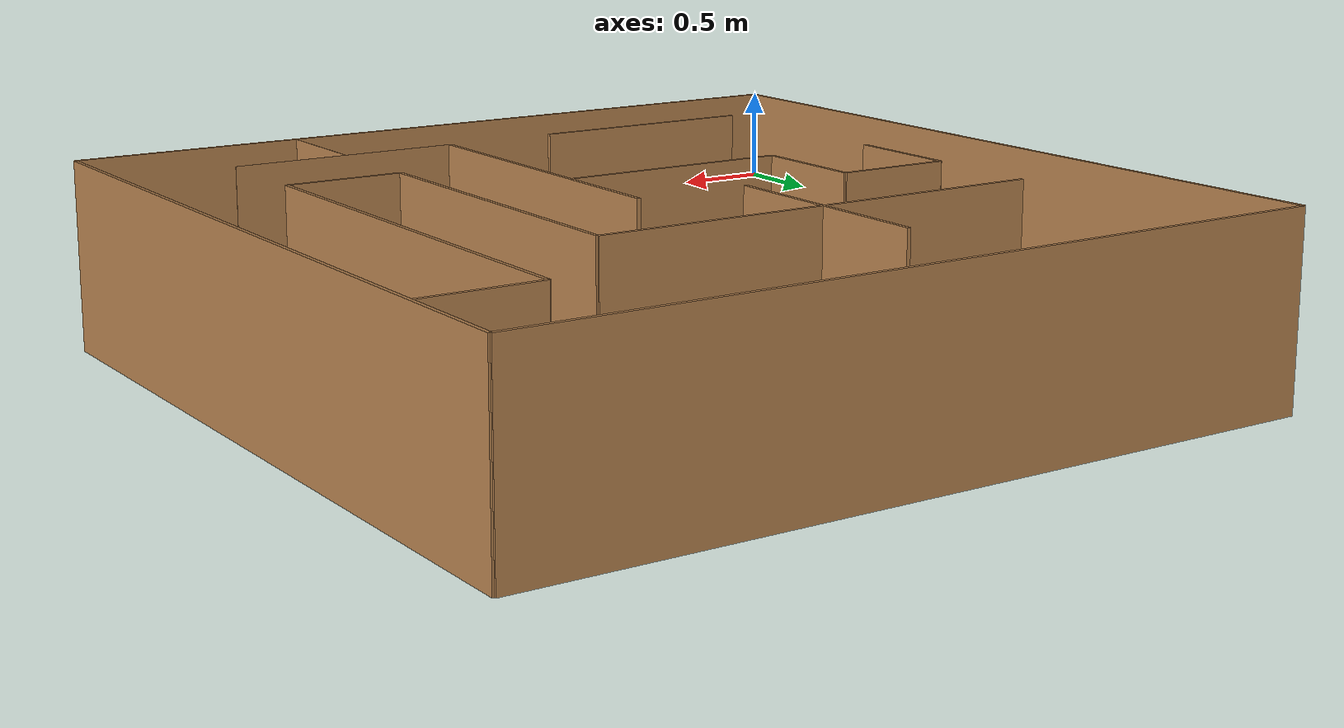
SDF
<?xml version='1.0'?>
<sdf version='1.6'>
  <model name='eced3901_lab5'>
    <pose>0 0 0 0 -0 0</pose>
    <link name='Wall_0'>
      <collision name='Wall_0_Collision'>
        <geometry>
          <box>
            <size>1.2192 0.02 1</size>
          </box>
        </geometry>
      </collision>
      <visual name='Wall_0_Visual'>
        <geometry>
          <box>
            <size>1.2192 0.02 1</size>
          </box>
        </geometry>
        <material>
          <script>
            <uri>file://media/materials/scripts/gazebo.material</uri>
            <name>Gazebo/Wood</name>
          </script>
          <ambient>1 1 1 1</ambient>
        </material>
      </visual>
      <pose>1.2192 0.6096 0 0 -0 0</pose>
    </link>
    <link name='Wall_2'>
      <collision name='Wall_2_Collision'>
        <geometry>
          <box>
            <size>1.2192 0.002 1</size>
          </box>
        </geometry>
      </collision>
      <visual name='Wall_2_Visual'>
        <geometry>
          <box>
            <size>1.2192 0.002 1</size>
          </box>
        </geometry>
        <material>
          <script>
            <uri>file://media/materials/scripts/gazebo.material</uri>
            <name>Gazebo/Wood</name>
          </script>
          <ambient>1 1 1 1</ambient>
        </material>
      </visual>
      <pose>3.048 0.6096 0 0 -0 0</pose>
    </link>
    <link name='Wall_3'>
      <collision name='Wall_3_Collision'>
        <geometry>
          <box>
            <size>0.002 0.02 1</size>
          </box>
        </geometry>
      </collision>
      <visual name='Wall_3_Visual'>
        <geometry>
          <box>
            <size>0.002 0.6096 1</size>
          </box>
        </geometry>
        <material>
          <script>
            <uri>file://media/materials/scripts/gazebo.material</uri>
            <name>Gazebo/Wood</name>
          </script>
          <ambient>1 1 1 1</ambient>
        </material>
      </visual>
      <pose>3.048 0.3048 0 0 -0 0</pose>
    </link>
	<link name='Wall_4'>
      <collision name='Wall_4_Collision'>
        <geometry>
          <box>
            <size>0.02 1.8288 1</size>
          </box>
        </geometry>
      </collision>
      <visual name='Wall_4_Visual'>
        <geometry>
          <box>
            <size>0.02 1.8288 1</size>
          </box>
        </geometry>
        <material>
          <script>
            <uri>file://media/materials/scripts/gazebo.material</uri>
            <name>Gazebo/Wood</name>
          </script>
          <ambient>1 1 1 1</ambient>
        </material>
      </visual>
      <pose>2.4384 1.524 0 0 -0 0</pose>
    </link>
	<link name='Wall_5'>
      <collision name='Wall_5_Collision'>
        <geometry>
          <box>
            <size>1.2192 0.02 1</size>
          </box>
        </geometry>
      </collision>
      <visual name='Wall_5_Visual'>
        <geometry>
          <box>
            <size>1.2192 0.02 1</size>
          </box>
        </geometry>
        <material>
          <script>
            <uri>file://media/materials/scripts/gazebo.material</uri>
            <name>Gazebo/Wood</name>
          </script>
          <ambient>1 1 1 1</ambient>
        </material>
      </visual>
      <pose>1.8288 1.8288 0 0 -0 0</pose>
    </link>
	<link name='Wall_6'>
      <collision name='Wall_6_Collision'>
        <geometry>
          <box>
            <size>0.02 0.6096 1</size>
          </box>
        </geometry>
      </collision>
      <visual name='Wall_6_Visual'>
        <geometry>
          <box>
            <size>0.02 0.6096 1</size>
          </box>
        </geometry>
        <material>
          <script>
            <uri>file://media/materials/scripts/gazebo.material</uri>
            <name>Gazebo/Wood</name>
          </script>
          <ambient>1 1 1 1</ambient>
        </material>
      </visual>
      <pose>1.2192 2.1336  0 0 -0 0</pose>
    </link>
	<link name='Wall_7'>
      <collision name='Wall_7_Collision'>
        <geometry>
          <box>
            <size>0.02 0.6096 1</size>
          </box>
        </geometry>
      </collision>
      <visual name='Wall_7_Visual'>
        <geometry>
          <box>
            <size>0.02 0.6096 1</size>
          </box>
        </geometry>
        <material>
          <script>
            <uri>file://media/materials/scripts/gazebo.material</uri>
            <name>Gazebo/Wood</name>
          </script>
          <ambient>1 1 1 1</ambient>
        </material>
      </visual>
      <pose>0.6096 2.133600 0 0 -0 0</pose>
    </link>
	<link name='Wall_8'>
      <collision name='Wall_8_Collision'>
        <geometry>
          <box>
            <size>0.6096 0.02 1</size>
          </box>
        </geometry>
      </collision>
      <visual name='Wall_8_Visual'>
        <geometry>
          <box>
            <size>0.6096 0.02 1</size>
          </box>
        </geometry>
        <material>
          <script>
            <uri>file://media/materials/scripts/gazebo.material</uri>
            <name>Gazebo/Wood</name>
          </script>
          <ambient>1 1 1 1</ambient>
        </material>
      </visual>
      <pose>0.9144 2.4384 0 0 -0 0</pose>
    </link>
	<link name='Wall_9'>
      <collision name='Wall_9_Collision'>
        <geometry>
          <box>
            <size>2.4384 0.02 1</size>
          </box>
        </geometry>
      </collision>
      <visual name='Wall_9_Visual'>
        <geometry>
          <box>
            <size>2.4384 0.02 1</size>
          </box>
        </geometry>
        <material>
          <script>
            <uri>file://media/materials/scripts/gazebo.material</uri>
            <name>Gazebo/Wood</name>
          </script>
          <ambient>1 1 1 1</ambient>
        </material>
      </visual>
      <pose>1.8288 3.048 0 0 -0 0</pose>
    </link>
	<link name='Wall_10'>
      <collision name='Wall_10_Collision'>
        <geometry>
          <box>
            <size>0.02 1.2192 1</size>
          </box>
        </geometry>
      </collision>
      <visual name='Wall_10_Visual'>
        <geometry>
          <box>
            <size>0.02 1.2192 1</size>
          </box>
        </geometry>
        <material>
          <script>
            <uri>file://media/materials/scripts/gazebo.material</uri>
            <name>Gazebo/Wood</name>
          </script>
          <ambient>1 1 1 1</ambient>
        </material>
      </visual>
      <pose>1.8288 3.048 0 0 -0 0</pose>
    </link>
	<link name='Wall_11'>
      <collision name='Wall_11_Collision'>
        <geometry>
          <box>
            <size>0.02 1.8288 1</size>
          </box>
        </geometry>
      </collision>
      <visual name='Wall_11_Visual'>
        <geometry>
          <box>
            <size>0.02 1.8288 1</size>
          </box>
        </geometry>
        <material>
          <script>
            <uri>file://media/materials/scripts/gazebo.material</uri>
            <name>Gazebo/Wood</name>
          </script>
          <ambient>1 1 1 1</ambient>
        </material>
      </visual>
      <pose>3.048 2.1336 0 0 -0 0</pose>
    </link>
		<link name='Wall_12'>
      <collision name='Wall_12_Collision'>
        <geometry>
          <box>
            <size>0.02 2.4384 1</size>
          </box>
        </geometry>
      </collision>
      <visual name='Wall_12_Visual'>
        <geometry>
          <box>
            <size>0.02 2.4384 1</size>
          </box>
        </geometry>
        <material>
          <script>
            <uri>file://media/materials/scripts/gazebo.material</uri>
            <name>Gazebo/Wood</name>
          </script>
          <ambient>1 1 1 1</ambient>
        </material>
      </visual>
      <pose>3.6576 2.4384 0 0 -0 0</pose>
    </link>
	<link name='Wall_13'>
      <collision name='Wall_13_Collision'>
        <geometry>
          <box>
            <size>0.6096 0.02 1</size>
          </box>
        </geometry>
      </collision>
      <visual name='Wall_13_Visual'>
        <geometry>
          <box>
            <size>0.6096 0.02 1</size>
          </box>
        </geometry>
        <material>
          <script>
            <uri>file://media/materials/scripts/gazebo.material</uri>
            <name>Gazebo/Wood</name>
          </script>
          <ambient>1 1 1 1</ambient>
        </material>
      </visual>
      <pose>3.3528 1.2192 0 0 -0 0</pose>
    </link>
	<link name='Wall_14'>
      <collision name='Wall_14_Collision'>
        <geometry>
          <box>
            <size>0.6096 0.02 1</size>
          </box>
        </geometry>
      </collision>
      <visual name='Wall_14_Visual'>
        <geometry>
          <box>
            <size>0.6096 0.02 1</size>
          </box>
        </geometry>
        <material>
          <script>
            <uri>file://media/materials/scripts/gazebo.material</uri>
            <name>Gazebo/Wood</name>
          </script>
          <ambient>1 1 1 1</ambient>
        </material>
      </visual>
      <pose>3.9624 3.6576 0 0 -0 0</pose>
    </link>
	<link name='frame_0'>
      <collision name='frame_0_Collision'>
        <geometry>
          <box>
            <size>4.2672 0.02 1</size>
          </box>
        </geometry>
      </collision>
      <visual name='frame_0_Visual'>
        <geometry>
          <box>
            <size>4.2672 0.02 1</size>
          </box>
        </geometry>
        <material>
          <script>
            <uri>file://media/materials/scripts/gazebo.material</uri>
            <name>Gazebo/Wood</name>
          </script>
          <ambient>1 1 1 1</ambient>
        </material>
      </visual>
      <pose>2.1336 0 0 0 -0 0</pose>
    </link>
	<link name='frame_1'>
      <collision name='frame_1_Collision'>
        <geometry>
          <box>
            <size>4.2672 0.02 1</size>
          </box>
        </geometry>
      </collision>
      <visual name='frame_1_Visual'>
        <geometry>
          <box>
            <size>4.2672 0.02 1</size>
          </box>
        </geometry>
        <material>
          <script>
            <uri>file://media/materials/scripts/gazebo.material</uri>
            <name>Gazebo/Wood</name>
          </script>
          <ambient>1 1 1 1</ambient>
        </material>
      </visual>
      <pose>2.1336 4.2672 0 0 -0 0</pose>
    </link>
	<link name='frame_2'>
      <collision name='frame_2_Collision'>
        <geometry>
          <box>
            <size>0.02 4.2672 1</size>
          </box>
        </geometry>
      </collision>
      <visual name='frame_2_Visual'>
        <geometry>
          <box>
            <size>0.02 4.2672 1</size>
          </box>
        </geometry>
        <material>
          <script>
            <uri>file://media/materials/scripts/gazebo.material</uri>
            <name>Gazebo/Wood</name>
          </script>
          <ambient>1 1 1 1</ambient>
        </material>
      </visual>
      <pose>0 2.1336 0 0 -0 0</pose>
    </link>
	<link name='frame_3'>
      <collision name='frame_3_Collision'>
        <geometry>
          <box>
            <size>0.02 4.2672 1</size>
          </box>
        </geometry>
      </collision>
      <visual name='frame_3_Visual'>
        <geometry>
          <box>
            <size>0.02 4.2672 1</size>
          </box>
        </geometry>
        <material>
          <script>
            <uri>file://media/materials/scripts/gazebo.material</uri>
            <name>Gazebo/Wood</name>
          </script>
          <ambient>1 1 1 1</ambient>
        </material>
      </visual>
      <pose>4.2672 2.1336 0 0 -0 0</pose>
    </link>
    <static>1</static>
  </model>
</sdf>
